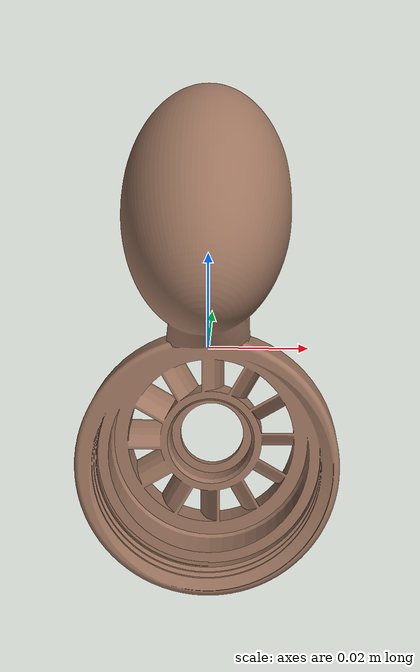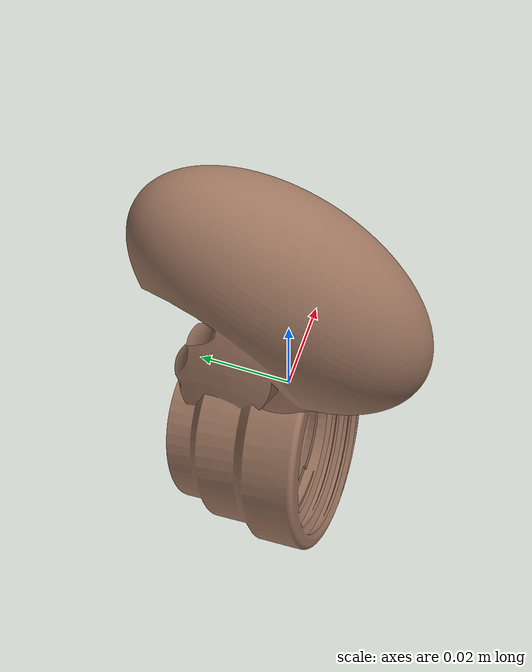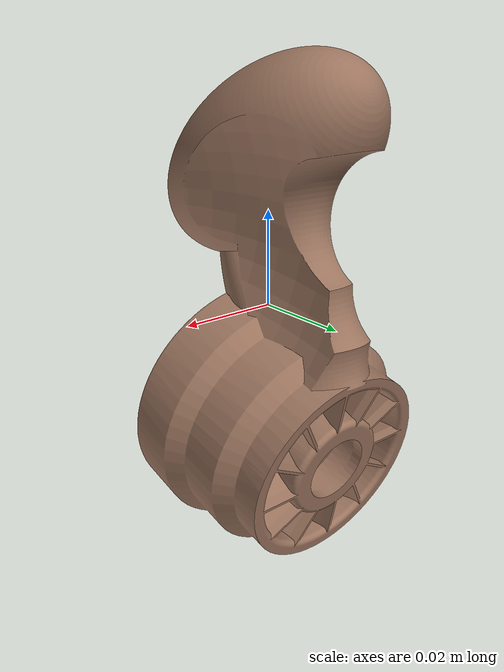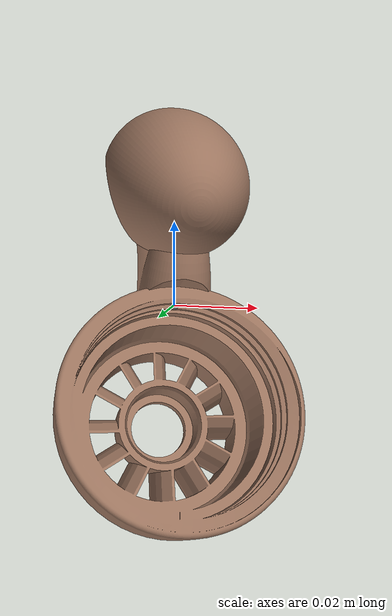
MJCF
<mujoco model="4">
  <default>
    <default class="visual">
      <geom group="2" type="mesh" contype="0" conaffinity="0" material="color_4" />
    </default>
    <default class="collision">
      <geom group="3" type="mesh" solimp="0.95 0.99 0.0001" solref="0.01 1" />
    </default>
  </default>
  <asset>
    <mesh file="4.obj" />
    <mesh file="4_collision_0.obj" />
    <mesh file="4_collision_1.obj" />
    <mesh file="4_collision_2.obj" />
    <mesh file="4_collision_3.obj" />
    <mesh file="4_collision_4.obj" />
    <mesh file="4_collision_5.obj" />
    <mesh file="4_collision_6.obj" />
    <mesh file="4_collision_7.obj" />
    <mesh file="4_collision_8.obj" />
    <mesh file="4_collision_9.obj" />
    <mesh file="4_collision_10.obj" />
    <mesh file="4_collision_11.obj" />
    <mesh file="4_collision_12.obj" />
    <mesh file="4_collision_13.obj" />
    <mesh file="4_collision_14.obj" />
    <mesh file="4_collision_15.obj" />
    <mesh file="4_collision_16.obj" />
    <mesh file="4_collision_17.obj" />
    <mesh file="4_collision_18.obj" />
    <mesh file="4_collision_19.obj" />
    <mesh file="4_collision_20.obj" />
    <mesh file="4_collision_21.obj" />
    <mesh file="4_collision_22.obj" />
    <mesh file="4_collision_23.obj" />
    <mesh file="4_collision_24.obj" />
    <mesh file="4_collision_25.obj" />
    <mesh file="4_collision_26.obj" />
    <mesh file="4_collision_27.obj" />
    <mesh file="4_collision_28.obj" />
    <mesh file="4_collision_29.obj" />
    <mesh file="4_collision_30.obj" />
    <mesh file="4_collision_31.obj" />
    <material name='color_4' specular='0.5' shininess='0.25'
      rgba='0.611764706 0.458823529 0.37254902 1.0' />
  </asset>
  <worldbody>
    <body name="4">
      <site name="centroid" euler="90 0 225" size="0.001 0.001 0.001" />
      <geom name="main_geom" mesh="4" class="visual" />
      <geom mesh="4_collision_0" class="collision" />
      <geom mesh="4_collision_1" class="collision" />
      <geom mesh="4_collision_2" class="collision" />
      <geom mesh="4_collision_3" class="collision" />
      <geom mesh="4_collision_4" class="collision" />
      <geom mesh="4_collision_5" class="collision" />
      <geom mesh="4_collision_6" class="collision" />
      <geom mesh="4_collision_7" class="collision" />
      <geom mesh="4_collision_8" class="collision" />
      <geom mesh="4_collision_9" class="collision" />
      <geom mesh="4_collision_10" class="collision" />
      <geom mesh="4_collision_11" class="collision" />
      <geom mesh="4_collision_12" class="collision" />
      <geom mesh="4_collision_13" class="collision" />
      <geom mesh="4_collision_14" class="collision" />
      <geom mesh="4_collision_15" class="collision" />
      <geom mesh="4_collision_16" class="collision" />
      <geom mesh="4_collision_17" class="collision" />
      <geom mesh="4_collision_18" class="collision" />
      <geom mesh="4_collision_19" class="collision" />
      <geom mesh="4_collision_20" class="collision" />
      <geom mesh="4_collision_21" class="collision" />
      <geom mesh="4_collision_22" class="collision" />
      <geom mesh="4_collision_23" class="collision" />
      <geom mesh="4_collision_24" class="collision" />
      <geom mesh="4_collision_25" class="collision" />
      <geom mesh="4_collision_26" class="collision" />
      <geom mesh="4_collision_27" class="collision" />
      <geom mesh="4_collision_28" class="collision" />
      <geom mesh="4_collision_29" class="collision" />
      <geom mesh="4_collision_30" class="collision" />
      <geom mesh="4_collision_31" class="collision" />
    </body>
  </worldbody>
</mujoco>
